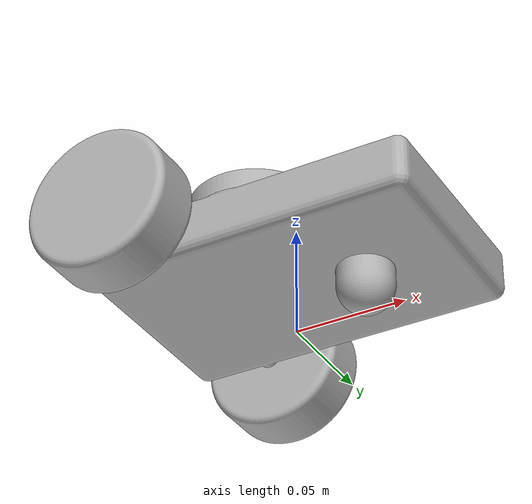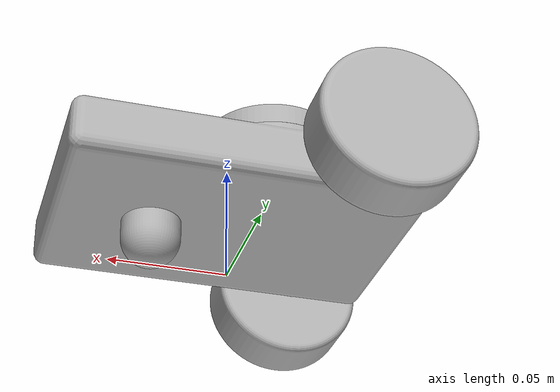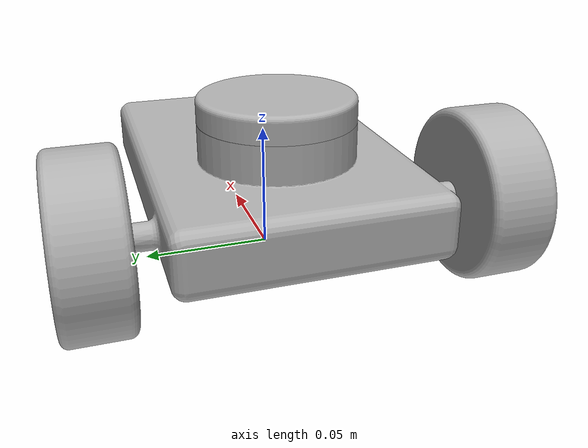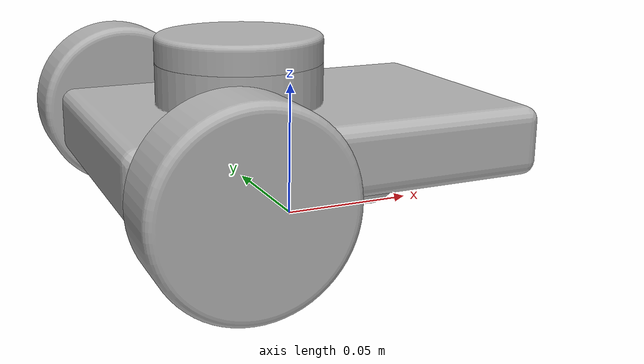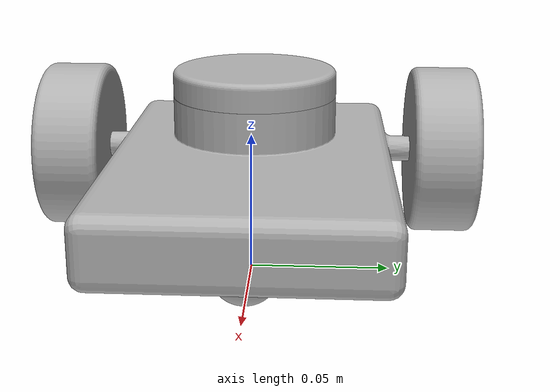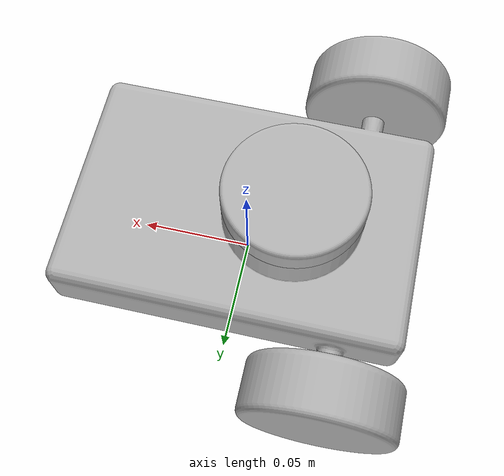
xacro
<?xml version="1.0" ?>

<robot name="rmp_bot" xmlns:xacro="http://www.ros.org/wiki/xacro">

<xacro:include filename="$(find rmp_bot_description)/urdf/materials.xacro" />
<xacro:include filename="$(find rmp_bot_description)/urdf/rmp_bot.trans" />
<xacro:include filename="$(find rmp_bot_description)/urdf/rmp_bot.gazebo" />

<link name="base_link">
  <inertial>
    <origin rpy="0 0 0" xyz="-0.0014277510428117768 7.97628116380829e-16 0.03439876230400392"/>
    <mass value="0.35957753784491137"/>
    <inertia ixx="0.000338" ixy="0.0" ixz="1.3e-05" iyy="0.000701" iyz="0.0" izz="0.000969"/>
  </inertial>
  <visual>
    <origin rpy="0 0 0" xyz="0 0 0"/>
    <geometry>
      <mesh filename="package://rmp_bot_description/meshes/base_link.stl" scale="0.001 0.001 0.001"/>
    </geometry>
    <material name="silver"/>
  </visual>
  <collision>
    <origin rpy="0 0 0" xyz="0 0 0"/>
    <geometry>
      <mesh filename="package://rmp_bot_description/meshes/base_link.stl" scale="0.001 0.001 0.001"/>
    </geometry>
  </collision>
</link>

<link name="r_wheel_1">
  <inertial>
    <origin rpy="0 0 0" xyz="-9.837591858491423e-08 -0.012499999999999997 0.0"/>
    <mass value="0.07643218104766494"/>
    <inertia ixx="2.4e-05" ixy="0.0" ixz="-0.0" iyy="4e-05" iyz="0.0" izz="2.4e-05"/>
  </inertial>
  <visual>
    <origin rpy="0 0 0" xyz="0.046442 0.06 -0.0325"/>
    <geometry>
      <mesh filename="package://rmp_bot_description/meshes/r_wheel_1.stl" scale="0.001 0.001 0.001"/>
    </geometry>
    <material name="silver"/>
  </visual>
  <collision>
    <origin rpy="0 0 0" xyz="0.046442 0.06 -0.0325"/>
    <geometry>
      <mesh filename="package://rmp_bot_description/meshes/r_wheel_1.stl" scale="0.001 0.001 0.001"/>
    </geometry>
  </collision>
</link>

<link name="l_wheel_1">
  <inertial>
    <origin rpy="0 0 0" xyz="-9.837591857797534e-08 0.012499999999999997 -6.938893903907228e-18"/>
    <mass value="0.07643218104766496"/>
    <inertia ixx="2.4e-05" ixy="0.0" ixz="0.0" iyy="4e-05" iyz="0.0" izz="2.4e-05"/>
  </inertial>
  <visual>
    <origin rpy="0 0 0" xyz="0.046442 -0.06 -0.0325"/>
    <geometry>
      <mesh filename="package://rmp_bot_description/meshes/l_wheel_1.stl" scale="0.001 0.001 0.001"/>
    </geometry>
    <material name="silver"/>
  </visual>
  <collision>
    <origin rpy="0 0 0" xyz="0.046442 -0.06 -0.0325"/>
    <geometry>
      <mesh filename="package://rmp_bot_description/meshes/l_wheel_1.stl" scale="0.001 0.001 0.001"/>
    </geometry>
  </collision>
</link>

<link name="lidar_1">
  <inertial>
    <origin rpy="0 0 0" xyz="3.469446951953614e-18 5.0545567703299455e-18 0.004974201326612374"/>
    <mass value="0.03992321109941673"/>
    <inertia ixx="9e-06" ixy="0.0" ixz="0.0" iyy="9e-06" iyz="0.0" izz="1.8e-05"/>
  </inertial>
  <visual>
    <origin rpy="0 0 0" xyz="0.02 -0.0 -0.06"/>
    <geometry>
      <mesh filename="package://rmp_bot_description/meshes/lidar_1.stl" scale="0.001 0.001 0.001"/>
    </geometry>
    <material name="silver"/>
  </visual>
  <collision>
    <origin rpy="0 0 0" xyz="0.02 -0.0 -0.06"/>
    <geometry>
      <mesh filename="package://rmp_bot_description/meshes/lidar_1.stl" scale="0.001 0.001 0.001"/>
    </geometry>
  </collision>
</link>

<link name="caster_1">
  <inertial>
    <origin rpy="0 0 0" xyz="-0.037500000000000026 -2.285535434258695e-18 -0.00819078947368421"/>
    <mass value="0.02098485717827557"/>
    <inertia ixx="1e-06" ixy="-0.0" ixz="-0.0" iyy="1e-06" iyz="0.0" izz="1e-06"/>
  </inertial>
  <visual>
    <origin rpy="0 0 0" xyz="-0.07 -0.0 -0.02"/>
    <geometry>
      <mesh filename="package://rmp_bot_description/meshes/caster_1.stl" scale="0.001 0.001 0.001"/>
    </geometry>
    <material name="silver"/>
  </visual>
  <collision>
    <origin rpy="0 0 0" xyz="-0.07 -0.0 -0.02"/>
    <geometry>
      <mesh filename="package://rmp_bot_description/meshes/caster_1.stl" scale="0.001 0.001 0.001"/>
    </geometry>
  </collision>
</link>

<joint name="r_motor" type="continuous">
  <origin rpy="0 0 0" xyz="-0.046442 -0.06 0.0325"/>
  <parent link="base_link"/>
  <child link="r_wheel_1"/>
  <axis xyz="0.0 1.0 0.0"/>
</joint>

<joint name="l_motor" type="continuous">
  <origin rpy="0 0 0" xyz="-0.046442 0.06 0.0325"/>
  <parent link="base_link"/>
  <child link="l_wheel_1"/>
  <axis xyz="0.0 1.0 0.0"/>
</joint>

<joint name="lidar" type="fixed">
  <origin rpy="0 0 0" xyz="-0.02 0.0 0.06"/>
  <parent link="base_link"/>
  <child link="lidar_1"/>
</joint>

<joint name="caster" type="fixed">
  <origin rpy="0 0 0" xyz="0.07 0.0 0.02"/>
  <parent link="base_link"/>
  <child link="caster_1"/>
</joint>

</robot>

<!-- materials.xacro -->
<robot name="rmp_bot" xmlns:xacro="http://www.ros.org/wiki/xacro" >

<material name="silver">
  <color rgba="0.700 0.700 0.700 1.000"/>
</material>

</robot>

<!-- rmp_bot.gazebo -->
<robot name="rmp_bot" xmlns:xacro="http://www.ros.org/wiki/xacro" >

<xacro:property name="body_color" value="Gazebo/Silver" />
<xacro:property name="wheel_color" value="Gazebo/Black" />
<xacro:property name="lidar_color" value="Gazebo/Red" />

<gazebo>
  <plugin filename="libgazebo_ros_control.so" name="control"/>
</gazebo>
<gazebo reference="base_link">
  <material>${body_color}</material>
  <mu1>0.2</mu1>
  <mu2>0.2</mu2>
  <selfCollide>true</selfCollide>
  <gravity>true</gravity>
</gazebo>

<gazebo reference="r_wheel_1">
  <material>${wheel_color}</material>
  <mu1>100</mu1>
  <mu2>100</mu2>
  <selfCollide>true</selfCollide>
</gazebo>

<gazebo reference="l_wheel_1">
  <material>${wheel_color}</material>
  <mu1>100</mu1>
  <mu2>100</mu2>
  <selfCollide>true</selfCollide>
</gazebo>

<gazebo reference="lidar_1">
  <material>${lidar_color}</material>
  <mu1>0.2</mu1>
  <mu2>0.2</mu2>
  <selfCollide>true</selfCollide>
</gazebo>

<gazebo reference="caster_1">
  <material>${body_color}</material>
  <mu1>0.2</mu1>
  <mu2>0.2</mu2>
  <selfCollide>true</selfCollide>
</gazebo>

<!-- DIFFRENTIAL_DRIVE_PLUGIN -->
<gazebo>
  <plugin name="differential_drive_controller" filename="libgazebo_ros_diff_drive.so">

    <!-- Plugin update rate in Hz -->
    <updateRate>10</updateRate>

    <!-- Name of left joint, defaults to `left_joint` -->
    <leftJoint>l_motor</leftJoint>

    <!-- Name of right joint, defaults to `right_joint` -->
    <rightJoint>r_motor</rightJoint>

    <!-- The distance from the center of one wheel to the other, in meters, defaults to 0.34 m -->
    <wheelSeparation>0.145</wheelSeparation>

    <!-- Diameter of the wheels, in meters, defaults to 0.15 m -->
    <wheelDiameter>0.065</wheelDiameter>

    <!-- Wheel acceleration, in rad/s^2, defaults to 0.0 rad/s^2 -->
    <wheelAcceleration>1.0</wheelAcceleration>

    <!-- Maximum torque which the wheels can produce, in Nm, defaults to 5 Nm -->
    <wheelTorque>20</wheelTorque>

    <!-- Topic to receive geometry_msgs/Twist message commands, defaults to `cmd_vel` -->
    <commandTopic>cmd_vel</commandTopic>

    <!-- Topic to publish nav_msgs/Odometry messages, defaults to `odom` -->
    <odometryTopic>odom</odometryTopic>

    <!-- Odometry frame, defaults to `odom` -->
    <odometryFrame>odom</odometryFrame>

    <!-- Robot frame to calculate odometry from, defaults to `base_footprint` -->
    <robotBaseFrame>base_link</robotBaseFrame>

    <!-- Odometry source, 0 for ENCODER, 1 for WORLD, defaults to WORLD -->
    <odometrySource>1</odometrySource>

    <!-- Set to true to publish transforms for the wheel links, defaults to false -->
    <publishWheelTF>true</publishWheelTF>

    <!-- Set to true to publish transforms for the odometry, defaults to true -->
    <publishOdom>true</publishOdom>

    <!-- Set to true to publish sensor_msgs/JointState on /joint_states for the wheel joints, defaults to false -->
    <publishWheelJointState>true</publishWheelJointState>

    <!-- Set to true to swap right and left wheels, defaults to true -->
    <legacyMode>false</legacyMode>
  </plugin>
</gazebo>

<!-- LIDAR_PLUGIN -->
<gazebo reference="lidar_1">
    <sensor type="ray" name="head_hokuyo_sensor">
      <pose>0 0 0 0 0 0</pose>
      <visualize>true</visualize>
      <update_rate>10</update_rate>
      <ray>
        <scan>
          <horizontal>
            <samples>720</samples>
            <resolution>1</resolution>
            <min_angle>-3.141593</min_angle>
            <max_angle>3.141593</max_angle>
          </horizontal>
        </scan>
        <range>
          <min>0.10</min>
          <max>20.0</max>
          <resolution>0.01</resolution>
        </range>
        <noise>
          <type>gaussian</type>
          <mean>0.0</mean>
          <stddev>0.01</stddev>
        </noise>
      </ray>
      <plugin name="gazebo_ros_head_hokuyo_controller" filename="libgazebo_ros_laser.so">
        <topicName>/scan</topicName>
        <frameName>lidar_1</frameName>
      </plugin>
    </sensor>
  </gazebo>
</robot>
